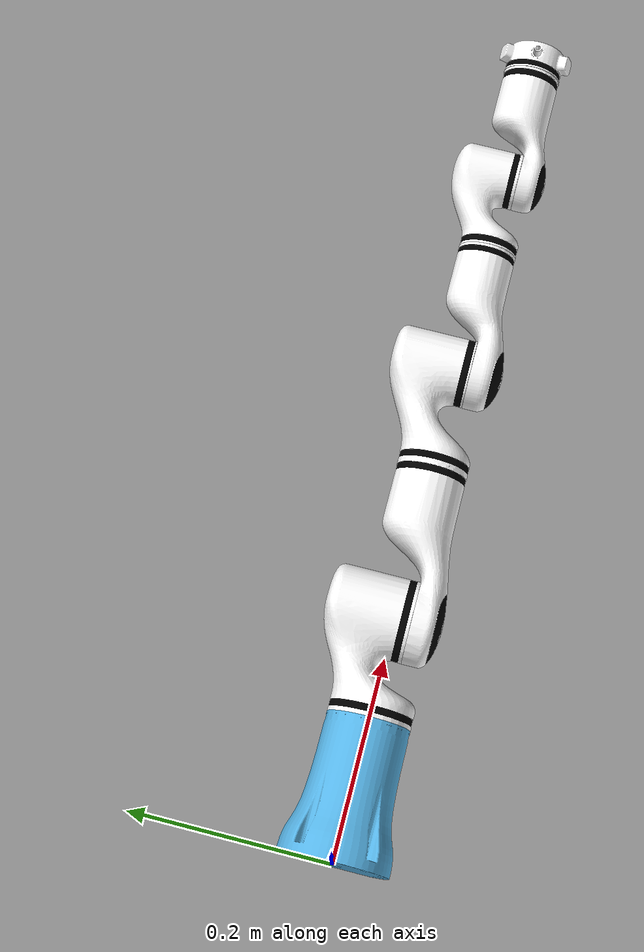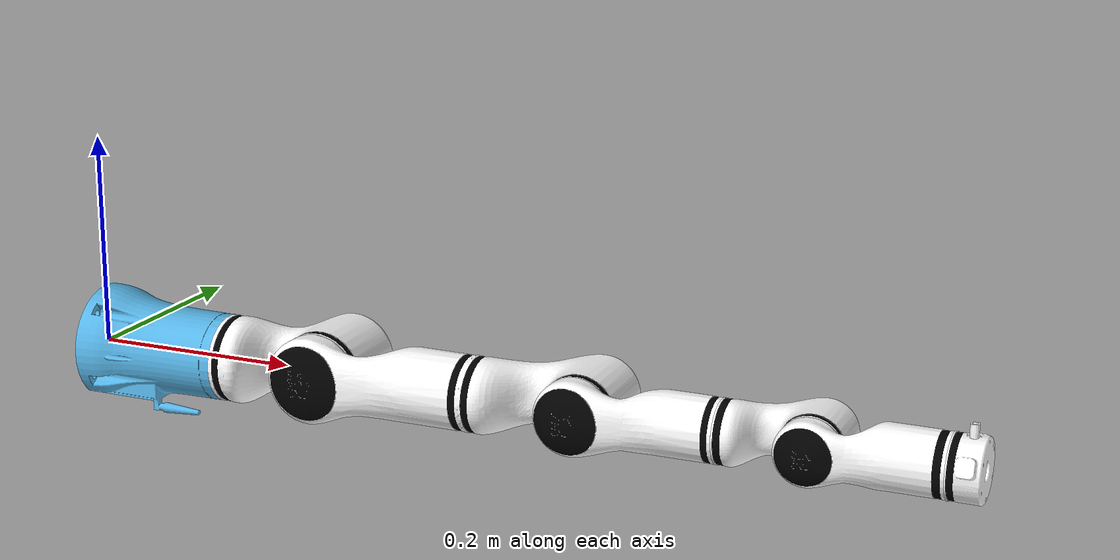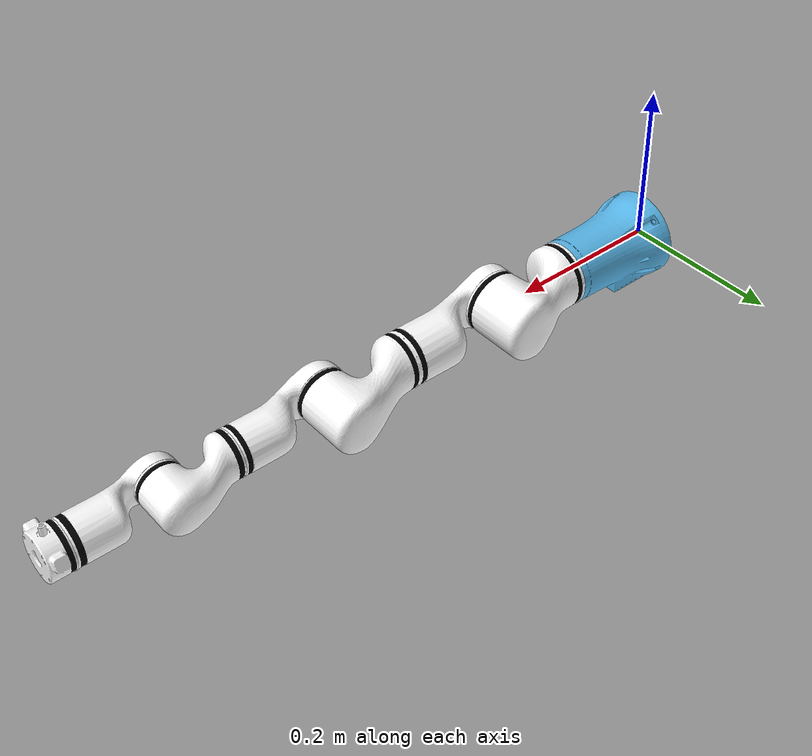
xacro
<?xml version="1.0" encoding="utf-8"?>
<robot  name="rm_65" xmlns:xacro="http://www.ros.org/wiki/xacro">
<xacro:include filename="$(find rm_description)/urdf/RM65/rm_65.transmission.xacro"/>
<xacro:include filename="$(find rm_description)/urdf/RM65/rm_65.gazebo.xacro"/>
  <link name="dummy">
  </link>
  <link
    name="base_link">
    <inertial>
      <origin rpy="0 0 0" xyz="-0.00049987 -5.2709E-05 0.060019"/>
      <mass value="1.862"/>
      <inertia ixx="0.0017232" ixy="-3.1058E-06" ixz="3.7924E-05" iyy="0.0017051" iyz="-1.3691E-06" izz="0.00090158"/>
    </inertial>
    <visual>
      <origin rpy="0 0 0" xyz="0 0 0"/>
      <geometry>
        <mesh filename="package://rm_description/meshes/dae/rm65/base_link.dae"/>
      </geometry>
    </visual>
    <collision>
      <origin
        xyz="0 0 0"
        rpy="0 0 0" />
      <geometry>
        <mesh
          filename="package://rm_description/meshes/RM65/base_link.STL" />
      </geometry>
    </collision>
  </link>

  <gazebo reference="base_link">
    <mu1 value="200000.0"/>
    <mu2 value="200000.0"/>
    <kp value="100000000.0"/>
    <kd value="1.0"/>
  </gazebo>

  <joint name="dummy_joint" type="fixed">
    <origin
      xyz="0 0 0"
      rpy="0 1.57 0" />
    <parent link="dummy" />
    <child link="base_link" />
  </joint>

  <link
    name="Link1">
    <inertial>
      <origin rpy="0 0 0" xyz="0.000941 0.007803 -0.10744"/>
      <mass value="1.51"/>
      <inertia ixx="0.002662223" ixy="-0.000026849" ixz="-0.000013775" iyy="0.002331685" iyz="-0.000078667" izz="0.001663712"/>
    </inertial>
    <visual>
      <origin
        xyz="0 0 0"
        rpy="0 0 0" />
      <geometry>
        <mesh
          filename="package://rm_description/meshes/dae/rm65/link_1.dae" />
      </geometry>
    </visual>
    <collision>
      <origin
        xyz="0 0 0"
        rpy="0 0 0" />
      <geometry>
        <mesh
          filename="package://rm_description/meshes/RM65/link1.STL" />
      </geometry>
    </collision>
  </link>
  <joint
    name="joint1"
    type="revolute">
    <origin
      xyz="0 0 0.2405"
      rpy="0 0 0" />
    <parent
      link="base_link" />
    <child
      link="Link1" />
    <axis
      xyz="0 0 1" />
    <limit effort="60" lower="-3.106" upper="3.106" velocity="3.14"/>
	<dynamics damping="50" friction="1"/>
  </joint>
  <link
    name="Link2">
    <inertial>
      <origin rpy="0 0 0" xyz="0.183722 0.000103 -0.001665"/>
      <mass value="1.653"/>
      <inertia ixx="0.001706953" ixy="-0.000006995" ixz="0.001809254" iyy="0.014713776" iyz="0.000006223" izz="0.014239805"/>
    </inertial>
    <visual>
      <origin
        xyz="0 0 0"
        rpy="0 0 0" />
      <geometry>
        <mesh
          filename="package://rm_description/meshes/dae/rm65/link_2.dae" />
      </geometry>
    </visual>
    <collision>
      <origin
        xyz="0 0 0"
        rpy="0 0 0" />
      <geometry>
        <mesh
          filename="package://rm_description/meshes/RM65/link2.STL" />
      </geometry>
    </collision>
  </link>
  <joint
    name="joint2"
    type="revolute">
    <origin rpy="-1.57079265345464 -1.57079265358979 3.14159265345464" xyz="0 0 0"/>
    <parent
      link="Link1" />
    <child
      link="Link2" />
    <axis
      xyz="0 0 1" />
    <limit effort="60" lower="-2.2689" upper="2.2689" velocity="3.14"/>
	<dynamics damping="50" friction="1"/>
  </joint>
  <link
    name="Link3">
    <inertial>
      <origin rpy="0 0 0" xyz="0.000029 -0.090105 0.004039"/>
      <mass value="0.726"/>
      <inertia ixx="0.001350874" ixy="0.000001069" ixz="-0.000000228" iyy="0.000360021" iyz="-0.000219904" izz="0.001331598"/>
    </inertial>
    <visual>
      <origin
        xyz="0 0 0"
        rpy="0 0 0" />
      <geometry>
        <mesh
          filename="package://rm_description/meshes/dae/rm65/link_3.dae" />
      </geometry>
    </visual>
    <collision>
      <origin
        xyz="0 0 0"
        rpy="0 0 0" />
      <geometry>
        <mesh
          filename="package://rm_description/meshes/RM65/link3.STL" />
      </geometry>
    </collision>
  </link>
  <joint
    name="joint3"
    type="revolute">
    <origin
      xyz="0.256 0 0"
      rpy="0 0 1.5708" />
    <parent
      link="Link2" />
    <child
      link="Link3" />
    <axis
      xyz="0 0 1" />
    <limit effort="30" lower="-2.356" upper="2.356" velocity="3.14"/>
	<dynamics damping="50" friction="1"/>
  </joint>
  <link
    name="Link4">
    <inertial>
      <origin rpy="0 0 0" xyz="0.000007 -0.009486 -0.008041"/>
      <mass value="0.671"/>
      <inertia ixx="0.000690221" ixy="-0.000000865" ixz="-0.000000692" iyy="0.000552834" iyz="0.000016411" izz="0.000425835"/>
    </inertial>
    <visual>
      <origin
        xyz="0 0 0"
        rpy="0 0 0" />
      <geometry>
        <mesh
          filename="package://rm_description/meshes/dae/rm65/link_4.dae" />
      </geometry>
    </visual>
    <collision>
      <origin
        xyz="0 0 0"
        rpy="0 0 0" />
      <geometry>
        <mesh
          filename="package://rm_description/meshes/RM65/link4.STL" />
      </geometry>
    </collision>
  </link>
  <joint
    name="joint4"
    type="revolute">
    <origin
      xyz="0 -0.21 0"
      rpy="1.5708 0 0" />
    <parent
      link="Link3" />
    <child
      link="Link4" />
    <axis
      xyz="0 0 1" />
    <limit effort="10" lower="-3.106" upper="3.106" velocity="3.14"/>
	<dynamics damping="50" friction="1"/>
  </joint>
  <link
    name="Link5">
    <inertial>
      <origin rpy="0 0 0" xyz="0.000032 -0.083769 0.002326"/>
      <mass value="0.647"/>
      <inertia ixx="0.000834052" ixy="0.000000952" ixz="-0.000000257" iyy="0.000281767" iyz="-0.000111750" izz="0.000821714"/>
    </inertial>
    <visual>
      <origin
        xyz="0 0 0"
        rpy="0 0 0" />
      <geometry>
        <mesh
          filename="package://rm_description/meshes/dae/rm65/link_5.dae" />
      </geometry>
    </visual>
    <collision>
      <origin
        xyz="0 0 0"
        rpy="0 0 0" />
      <geometry>
        <mesh
          filename="package://rm_description/meshes/RM65/link5.STL" />
      </geometry>
    </collision>
  </link>
  <joint
    name="joint5"
    type="revolute">
    <origin
      xyz="0 0 0"
      rpy="-1.5708 0 0" />
    <parent
      link="Link4" />
    <child
      link="Link5" />
    <axis
      xyz="0 0 1" />
    <limit effort="10" lower="-2.234" upper="2.234" velocity="3.14"/>
	<dynamics damping="50" friction="1"/>
  </joint>
  <link
    name="Link6">
    <inertial>
      <origin rpy="0 0 0" xyz="-0.000569 0.00029 -0.010569"/>
      <mass value="0.104"/>
      <inertia ixx="3.043E-05" ixy="2.622E-09" ixz="2.199E-08" iyy="3.604E-05" iyz="1.195E-08" izz="5.52E-05"/>
    </inertial>
    <visual>
      <origin
        xyz="0 0 0"
        rpy="0 0 0" />
      <geometry>
        <mesh
          filename="package://rm_description/meshes/dae/rm65/link_6_bi.dae" />
      </geometry>
    </visual>
    <collision>
      <origin
        xyz="0 0 0"
        rpy="0 0 0" />
      <geometry>
        <mesh
          filename="package://rm_description/meshes/RM65/link6.STL" />
      </geometry>
    </collision>
  </link>
  <joint
    name="joint6"
    type="revolute">
    <origin
      xyz="0 -0.144 0"
      rpy="1.5708 0 0" />
    <parent
      link="Link5" />
    <child
      link="Link6" />
    <axis
      xyz="0 0 1" />
    <limit effort="10" lower="-6.28" upper="6.28" velocity="3.14"/>
	<dynamics damping="50" friction="1"/>
  </joint>

  <!-- Transmissions for ROS Control -->
  <xacro:macro name="transmission_block" params="joint_name">
    <transmission name="tran1">
      <type>transmission_interface/SimpleTransmission</type>
      <joint name="${joint_name}">
        <hardwareInterface>hardware_interface/PositionJointInterface</hardwareInterface>
      </joint>
      <actuator name="motor1">
        <hardwareInterface>hardware_interface/PositionJointInterface</hardwareInterface>
        <mechanicalReduction>1</mechanicalReduction>
      </actuator>
    </transmission>
  </xacro:macro>

  <xacro:transmission_block joint_name="joint1"/>
  <xacro:transmission_block joint_name="joint2"/>
  <xacro:transmission_block joint_name="joint3"/>
  <xacro:transmission_block joint_name="joint4"/>
  <xacro:transmission_block joint_name="joint5"/>
  <xacro:transmission_block joint_name="joint6"/>

  <!-- ros_control plugin -->
  <gazebo>
    <plugin name="gazebo_ros_control" filename="libgazebo_ros_control.so">
      <robotNamespace>/arm</robotNamespace>
      <robotSimType>gazebo_ros_control/DefaultRobotHWSim</robotSimType>
      <legacyModeNS>true</legacyModeNS>
    </plugin>
  </gazebo>
</robot>
